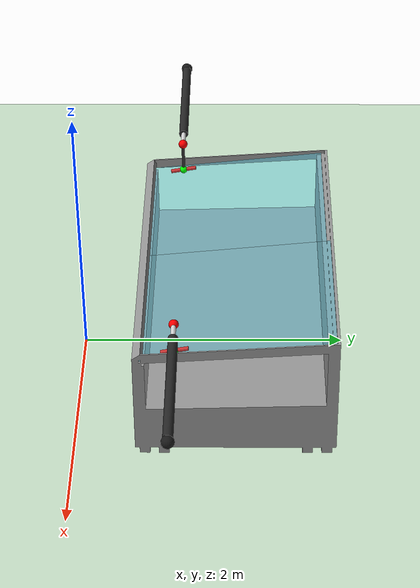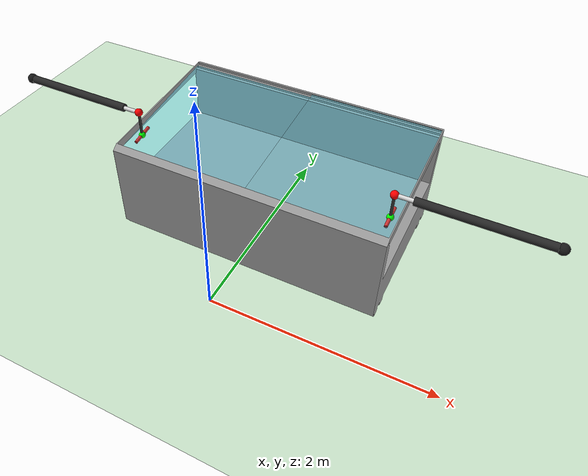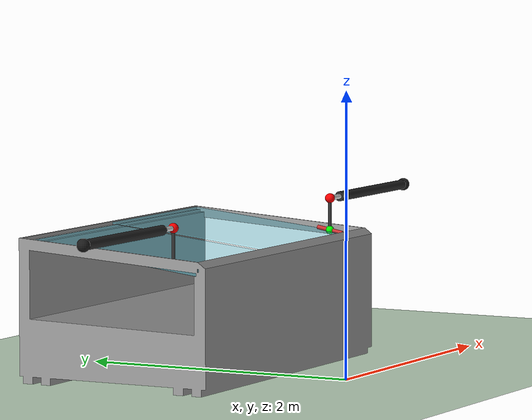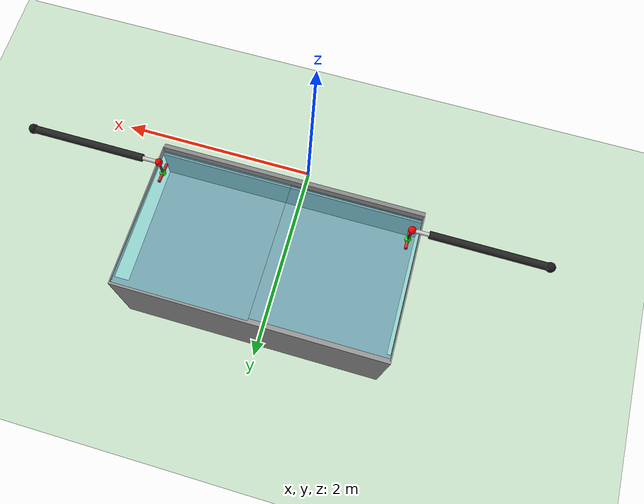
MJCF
<mujoco model="Test_athen_xl_pneumatic_horizontal">

  <option timestep="0.002" gravity="0 0 -9.81"/>
  <compiler angle="radian"/>

  <asset>
    <mesh name="frigo_mesh" file="athen_xl_corpo.obj"/>
    <mesh name="porta_sx_mesh" file="athen_xl_portasx.obj"/>
    <mesh name="porta_dx_mesh" file="athen_xl_portadx.obj"/>
  </asset>

  <worldbody>
    <geom name="pavimento" type="plane" size="5 5 0.1" rgba="0.8 0.9 0.8 1"/>
    <light directional="true" diffuse="0.8 0.8 0.8" specular="0.2 0.2 0.2" pos="0 0 5" dir="0 0 -1" castshadow="false"/>

    <!-- Pneumatico orizzontale porta sinistra -->
    <body name="supporto_pneumatico_sx" pos="-2.30 0.75 1.12">
        <geom name="supporto_base_sx" type="sphere" size="0.045" rgba="0.1 0.1 0.1 1" contype="0" conaffinity="0"/>
        <site name="base_cilindro_sx" pos="0 0 0" size="0.035" rgba="1 0 0 1"/>

        <body name="canna_cilindro_sx" pos="0 0 0" zaxis="1 0 0">
            <inertial pos="0 0 0.525" mass="1.5" diaginertia="0.060 0.060 0.010"/>
            <geom name="canna_visual_sx" type="cylinder" pos="0 0 0.525" size="0.035 0.525" rgba="0.15 0.15 0.15 1" contype="0" conaffinity="0"/>

            <body name="stelo_cilindro_sx" pos="0 0 0">
            <joint name="corsa_cilindro_sx" type="slide" axis="0 0 1" range="0 0.90" limited="true" damping="20" frictionloss="5"/>
            <inertial pos="0 0 0.60" mass="0.8" diaginertia="0.020 0.020 0.003"/>
            <geom name="stelo_visual_sx" type="cylinder" pos="0 0 0.60" size="0.018 0.60" rgba="0.85 0.85 0.85 1" contype="0" conaffinity="0"/>

            <body name="staffa_stelo_sx" pos="0 0 1.20">
              <joint name="snodo_stelo_staffa_sx" type="ball" damping="2.0" limited="true" range="0 0.0174533" solreflimit="0.004 1" solimplimit="0.95 0.99 0.001"/>
              <inertial pos="0.12 0 0" mass="0.3" diaginertia="0.002 0.002 0.002"/>

              <!-- Snodo rosso tra stelo e staffa -->
              <geom name="snodo_stelo_staffa_visual_sx" type="sphere" pos="0 0 0" size="0.035" rgba="1 0 0 1" contype="0" conaffinity="0"/>

              <!-- Staffa verticale, parte dello stelo -->
              <geom name="staffa_cilindro_sx" type="capsule" fromto="0 0 0 0.24 0 0" size="0.012" rgba="0.2 0.2 0.2 1" contype="0" conaffinity="0"/>

              <!-- Punto verde di aggrappo staffa-maniglia -->
              <geom name="aggrappo_staffa_maniglia_sx_visual" type="sphere" pos="0.24 0 0" size="0.03" rgba="0 1 0 1" contype="0" conaffinity="0"/>
              <site name="aggrappo_staffa_maniglia_sx" pos="0.24 0 0" size="0.025" rgba="0 1 0 0.5"/>
            </body>
            </body>
        </body>
    </body>

    <!-- Pneumatico orizzontale porta destra -->
    <body name="supporto_pneumatico_dx" pos="2.42 0.75 1.12">
        <geom name="supporto_base_dx" type="sphere" size="0.045" rgba="0.1 0.1 0.1 1" contype="0" conaffinity="0"/>
        <site name="base_cilindro_dx" pos="0 0 0" size="0.035" rgba="1 0 0 1"/>

        <body name="canna_cilindro_dx" pos="0 0 0" zaxis="-1 0 0">
            <inertial pos="0 0 0.525" mass="1.5" diaginertia="0.060 0.060 0.010"/>
            <geom name="canna_visual_dx" type="cylinder" pos="0 0 0.525" size="0.035 0.525" rgba="0.15 0.15 0.15 1" contype="0" conaffinity="0"/>

            <body name="stelo_cilindro_dx" pos="0 0 0">
            <joint name="corsa_cilindro_dx" type="slide" axis="0 0 1" range="0 0.90" limited="true" damping="20" frictionloss="5"/>
            <inertial pos="0 0 0.60" mass="0.8" diaginertia="0.020 0.020 0.003"/>
            <geom name="stelo_visual_dx" type="cylinder" pos="0 0 0.60" size="0.018 0.60" rgba="0.85 0.85 0.85 1" contype="0" conaffinity="0"/>

            <body name="staffa_stelo_dx" pos="0 0 1.20">
              <joint name="snodo_stelo_staffa_dx" type="ball" damping="2.0" limited="true" range="0 0.0174533" solreflimit="0.004 1" solimplimit="0.95 0.99 0.001"/>
              <inertial pos="-0.115 0 0" mass="0.3" diaginertia="0.002 0.002 0.002"/>

              <!-- Snodo rosso tra stelo e staffa -->
              <geom name="snodo_stelo_staffa_visual_dx" type="sphere" pos="0 0 0" size="0.035" rgba="1 0 0 1" contype="0" conaffinity="0"/>

              <!-- Staffa verticale, parte dello stelo -->
              <geom name="staffa_cilindro_dx" type="capsule" fromto="0 0 0 -0.23 0 0" size="0.012" rgba="0.2 0.2 0.2 1" contype="0" conaffinity="0"/>

              <!-- Punto verde di aggrappo staffa-maniglia -->
              <geom name="aggrappo_staffa_maniglia_dx_visual" type="sphere" pos="-0.23 0 0" size="0.03" rgba="0 1 0 1" contype="0" conaffinity="0"/>
              <site name="aggrappo_staffa_maniglia_dx" pos="-0.23 0 0" size="0.025" rgba="0 1 0 0.5"/>
            </body>
            </body>
        </body>
    </body>

    <!-- Banco frigo Athen XL -->
    <body name="banco_frigo" pos="-1.2 0.45 0">
      <geom type="mesh" mesh="frigo_mesh" rgba="0.6 0.6 0.6 1" contype="0" conaffinity="0"/>

      <body name="porta_sx" pos="0 0 0">
        <joint name="slide_sx" type="slide" axis="1 0 0" range="0 1.06" limited="true" damping="30" frictionloss="41.9"/>
        <inertial pos="0.65 0.7 0.9" mass="12" diaginertia="0.9801 1.5376 2.5177"/>
        <geom type="mesh" mesh="porta_sx_mesh" rgba="0.3 0.8 0.9 0.4" contype="0" conaffinity="0"/>

        <body name="maniglia_sx" pos="0.1 0.3 0.88" euler="1.75 0 0">
          <inertial pos="0 0 0" mass="0.2" diaginertia="0.001 0.001 0.001"/>
          <geom name="manigliasx" type="cylinder" size="0.015 0.1" rgba="0.8 0.2 0.2 1" contype="0" conaffinity="0"/>
          <site name="target_manigliasx" pos="0 0 0" size="0.02" rgba="1 0 0 0.5"/>
        </body>
      </body>

      <body name="porta_dx" pos="0 0 0">
        <joint name="slide_dx" type="slide" axis="-1 0 0" range="0 1.06" limited="true" damping="30" frictionloss="41.9"/>
        <inertial pos="1.85 0.7 0.9" mass="12" diaginertia="0.9801 1.5376 2.5177"/>
        <geom type="mesh" mesh="porta_dx_mesh" rgba="0.3 0.8 0.9 0.4" contype="0" conaffinity="0"/>

        <body name="maniglia_dx" pos="2.42 0.3 0.89" euler="1.75 0 0">
          <inertial pos="0 0 0" mass="0.2" diaginertia="0.001 0.001 0.001"/>
          <geom name="manigliadx" type="cylinder" size="0.015 0.1" rgba="0.8 0.2 0.2 1" contype="0" conaffinity="0"/>
          <site name="target_manigliadx" pos="0 0 0" size="0.02" rgba="1 0 0 0.5"/>
        </body>
      </body>
    </body>
  </worldbody>

  <equality>
    <connect name="connessione_staffa_maniglia_sx" site1="aggrappo_staffa_maniglia_sx" site2="target_manigliasx" solimp="0.9 0.95 0.001" solref="0.02 1"/>
    <connect name="connessione_staffa_maniglia_dx" site1="aggrappo_staffa_maniglia_dx" site2="target_manigliadx" solimp="0.9 0.95 0.001" solref="0.02 1"/>
  </equality>

  <actuator>
    <motor name="forza_pneumatica_sx" joint="corsa_cilindro_sx" gear="1" ctrllimited="true" ctrlrange="-200 200"/>
    <motor name="forza_pneumatica_dx" joint="corsa_cilindro_dx" gear="1" ctrllimited="true" ctrlrange="-200 200"/>
  </actuator>

  <!-- Sensori -->
  <sensor>
    <jointpos name="posizione_porta_sx" joint="slide_sx"/>
    <jointvel name="velocita_porta_sx" joint="slide_sx"/>
    <jointpos name="estensione_cilindro_sx" joint="corsa_cilindro_sx"/>
    <jointvel name="velocita_stelo_sx" joint="corsa_cilindro_sx"/>
    <framepos name="posizione_aggrappo_staffa_sx" objtype="site" objname="aggrappo_staffa_maniglia_sx"/>
    <framepos name="posizione_maniglia_sx" objtype="site" objname="target_manigliasx"/>

    <jointpos name="posizione_porta_dx" joint="slide_dx"/>
    <jointvel name="velocita_porta_dx" joint="slide_dx"/>
    <jointpos name="estensione_cilindro_dx" joint="corsa_cilindro_dx"/>
    <jointvel name="velocita_stelo_dx" joint="corsa_cilindro_dx"/>
    <framepos name="posizione_aggrappo_staffa_dx" objtype="site" objname="aggrappo_staffa_maniglia_dx"/>
    <framepos name="posizione_maniglia_dx" objtype="site" objname="target_manigliadx"/>
  </sensor>

</mujoco>
